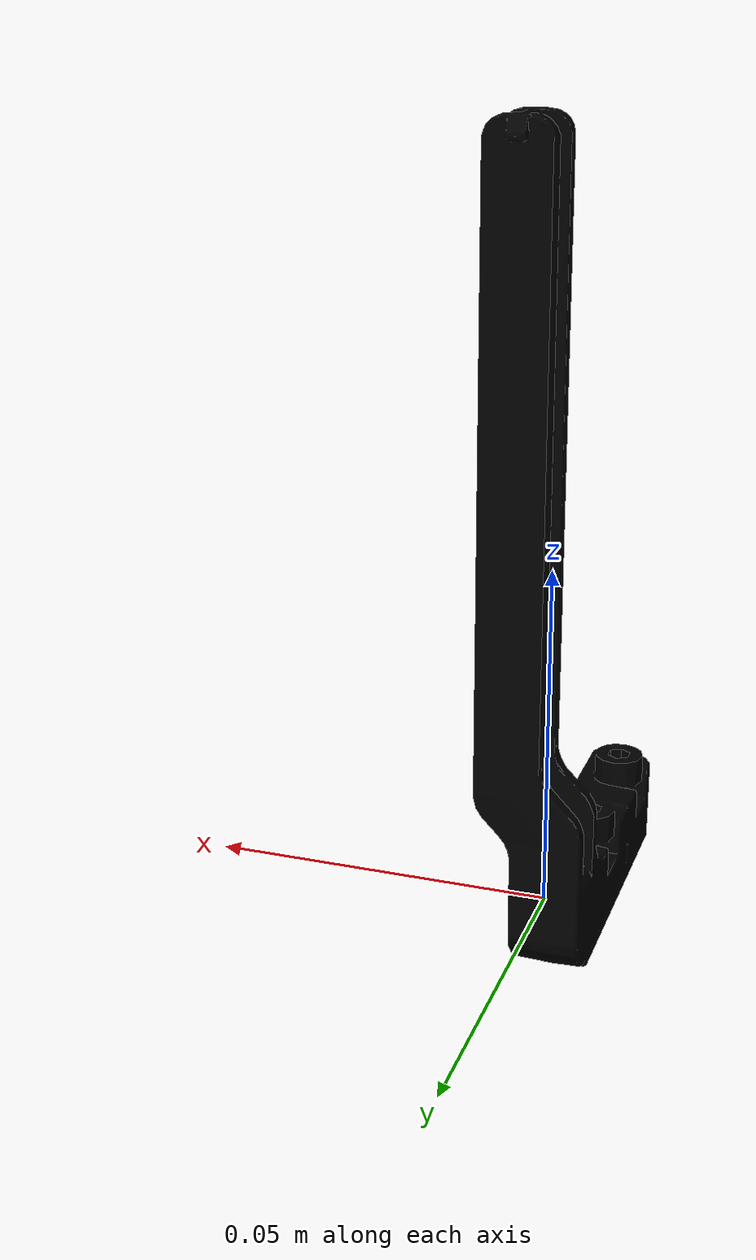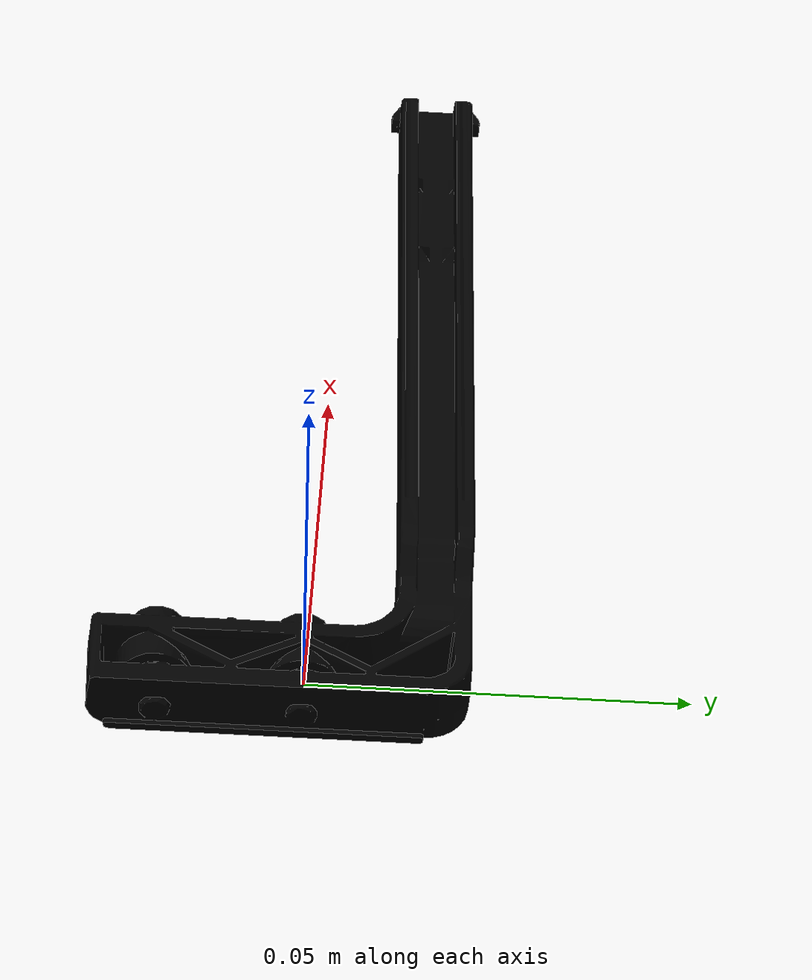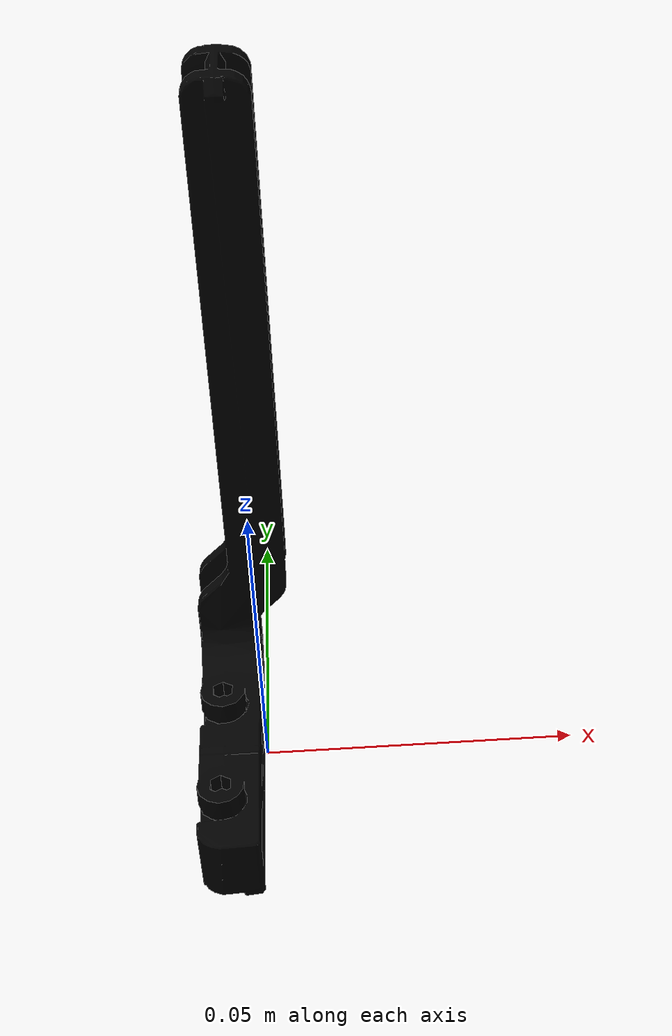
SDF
<sdf version='1.6'>
  <model name='left_end_effector'>
    <link name='l_gripper_l_finger'>
      <pose frame=''>0 0 0 0 -0 0</pose>
      <inertial>
        <pose frame=''>0 0 0 0 -0 3.14159</pose>
        <mass>0.02</mass>
        <inertia>
          <ixx>0.01</ixx>
          <ixy>0</ixy>
          <ixz>0</ixz>
          <iyy>0.01</iyy>
          <iyz>0</iyz>
          <izz>0.01</izz>
        </inertia>
      </inertial>
      <collision name='l_gripper_l_finger_collision_collision'>
        <pose frame=''>0 0.01725 0.0615 0 -0 3.14159</pose>
        <geometry>
          <box>
            <size>0.01 0.0135 0.1127</size>
          </box>
        </geometry>
        <surface>
          <contact>
            <ode>
              <kp>100000</kp>
              <kd>1</kd>
            </ode>
          </contact>
          <friction>
            <ode>
              <mu>1000</mu>
              <mu2>1000</mu2>
              <fdir1>0 0 1</fdir1>
            </ode>
          </friction>
        </surface>
      </collision>
      <collision name='l_gripper_l_finger_collision_1'>
        <pose frame=''>-0.005 -0.003 0.0083 0 -0 3.14159</pose>
        <geometry>
          <box>
            <size>0.01 0.05 0.017</size>
          </box>
        </geometry>
        <surface>
          <contact>
            <ode>
              <kp>100000</kp>
              <kd>1</kd>
            </ode>
          </contact>
          <friction>
            <ode>
              <mu>1000</mu>
              <mu2>1000</mu2>
              <fdir1>0 0 1</fdir1>
            </ode>
          </friction>
        </surface>
      </collision>
      <visual name='l_gripper_l_finger_visual'>
        <pose frame=''>0 0 0 0 -0 3.14159</pose>
        <geometry>
          <mesh>
            <scale>1 1 1</scale>
            <uri>model://rethink_ee_description/meshes/electric_gripper/fingers/extended_narrow.DAE</uri>
          </mesh>
        </geometry>
        <material>
          <script>
            <uri>__default__</uri>
            <name>__default__</name>
          </script>
        </material>
      </visual>
      <gravity>1</gravity>
      <velocity_decay/>
      <sensor name='l_gripper_l_finger_contact_sensor' type='contact'>
        <always_on>1</always_on>
        <update_rate>30</update_rate>
        <contact>
          <collision>l_gripper_l_finger_collision_collision</collision>
          <topic>__default_topic__</topic>
        </contact>
        <plugin name='l_side_l_finger_bumper' filename='libgazebo_ros_bumper.so'>
          <bumperTopicName>l_side_l_finger_contact_sensor_state</bumperTopicName>
          <frameName>l_side_l_finger</frameName>
        </plugin>
      </sensor>
    </link>
  </model>
</sdf>
